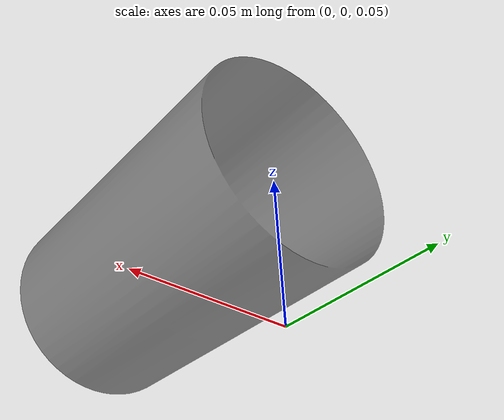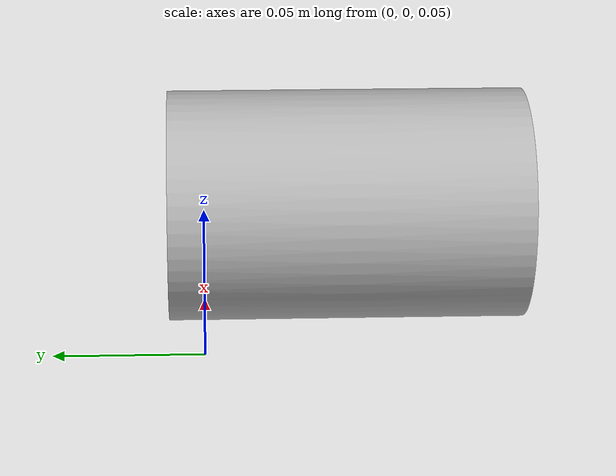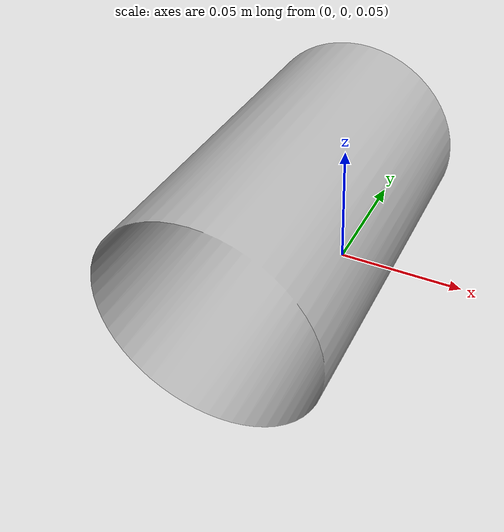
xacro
<?xml version="1.0" ?>
<robot name="motor_design" xmlns:xacro="http://www.ros.org/wiki/xacro">

<xacro:include filename="$(find motor_design_description)/urdf/materials.xacro" />
<xacro:include filename="$(find motor_design_description)/urdf/motor_design.trans" />
<xacro:include filename="$(find motor_design_description)/urdf/motor_design.gazebo" />
<link name="base_link">
  <inertial>
    <origin rpy="0 0 0" xyz="0.0 0.0 0.0"/>
    <mass value="0.0"/>
    <inertia ixx="0.0" ixy="0.0" ixz="0.0" iyy="0.0" iyz="0.0" izz="0.0"/>
  </inertial>
  <visual>
    <origin rpy="0 0 0" xyz="0 0 0"/>
    <geometry>
      <mesh filename="package://motor_design_description/meshes/base_link.stl" scale="0.001 0.001 0.001"/>
    </geometry>
    <material name="silver"/>
  </visual>
  <collision>
    <origin rpy="0 0 0" xyz="0 0 0"/>
    <geometry>
      <mesh filename="package://motor_design_description/meshes/base_link.stl" scale="0.001 0.001 0.001"/>
    </geometry>
  </collision>
</link>

</robot>

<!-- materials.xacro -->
<robot name="motor_design" xmlns:xacro="http://www.ros.org/wiki/xacro" >

<material name="silver">
  <color rgba="0.700 0.700 0.700 1.000"/>
</material>

</robot>

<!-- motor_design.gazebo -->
<robot name="motor_design" xmlns:xacro="http://www.ros.org/wiki/xacro" >

<xacro:property name="body_color" value="Gazebo/Silver" />

<gazebo>
  <plugin filename="libgazebo_ros_control.so" name="control"/>
</gazebo>
<gazebo reference="base_link">
  <material>${body_color}</material>
  <mu1>0.2</mu1>
  <mu2>0.2</mu2>
  <selfCollide>true</selfCollide>
  <gravity>true</gravity>
</gazebo>

</robot>
